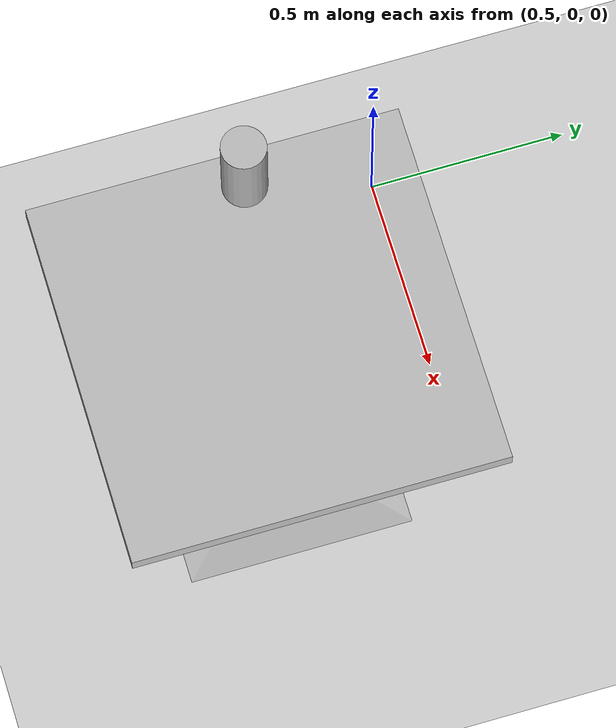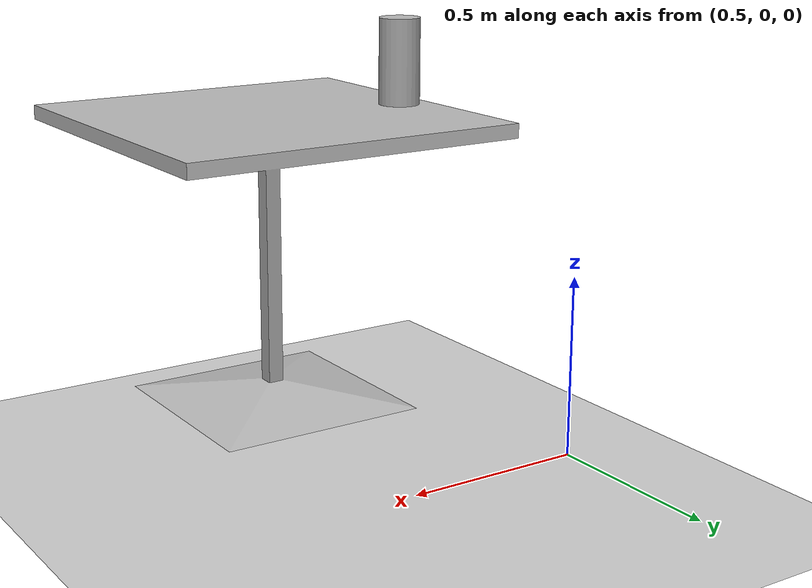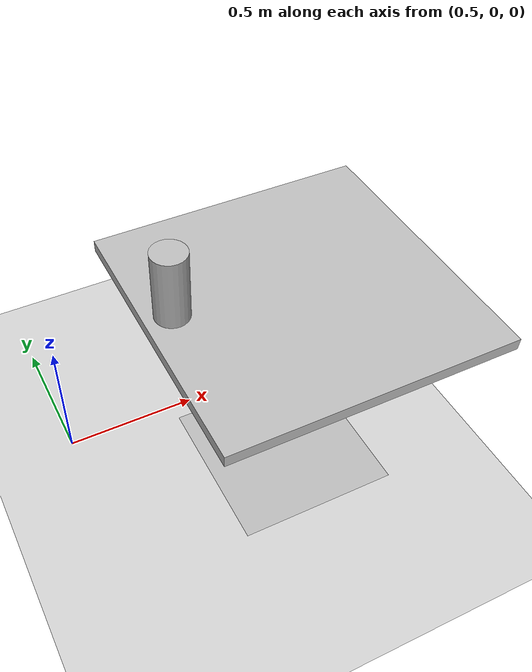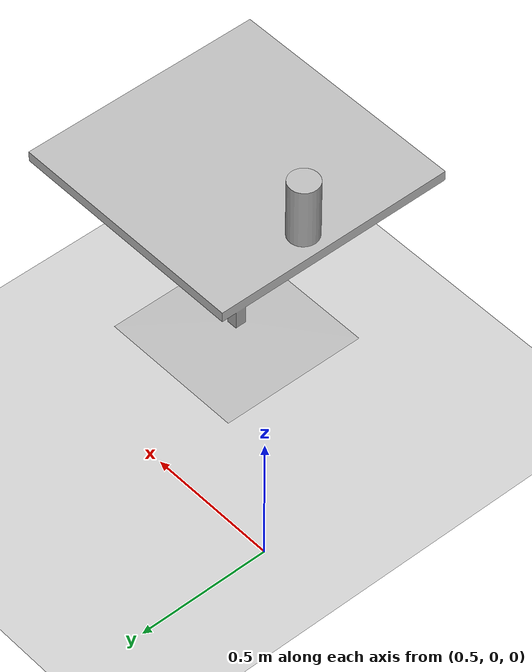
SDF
<sdf version="1.6">
 <world name="default">
  <light name="sun" type="directional">
   <pose>0 0 10 0 -0 0</pose>
   <diffuse>0.8 0.8 0.8 1</diffuse>
   <specular>0.2 0.2 0.2 1</specular>
   <attenuation>
    <range>1000</range>
    <constant>0.9</constant>
    <linear>0.01</linear>
    <quadratic>0.001</quadratic>
   </attenuation>
   <direction>-0.5 0.1 -0.9</direction>
  </light>
  <physics name="dart_1ms" default="1" type="dart">
   <max_step_size>0.001</max_step_size>
   <real_time_factor>1</real_time_factor>
   <real_time_update_rate>1000</real_time_update_rate>
   <dart><solver><solver_type>pgs</solver_type></solver></dart>
  </physics>
  <physics name="dart_2ms" default="0" type="dart">
   <max_step_size>0.002</max_step_size>
   <real_time_factor>1</real_time_factor>
   <real_time_update_rate>500</real_time_update_rate>
   <dart><solver><solver_type>pgs</solver_type></solver></dart>
  </physics>
  <physics name="dart_3ms" default="0" type="dart">
   <max_step_size>0.003</max_step_size>
   <real_time_factor>1</real_time_factor>
   <real_time_update_rate>333</real_time_update_rate>
   <dart><solver><solver_type>pgs</solver_type></solver></dart>
  </physics>
  <physics name="ode_1ms" default="0" type="ode">
   <max_step_size>0.001</max_step_size>
   <real_time_factor>1</real_time_factor>
   <real_time_update_rate>1000</real_time_update_rate>
  </physics>
  <physics name="ode_2ms" default="0" type="ode">
   <max_step_size>0.002</max_step_size>
   <real_time_factor>1</real_time_factor>
   <real_time_update_rate>500</real_time_update_rate>
  </physics>
  <physics name="ode_3ms" default="0" type="ode">
   <max_step_size>0.003</max_step_size>
   <real_time_factor>1</real_time_factor>
   <real_time_update_rate>333</real_time_update_rate>
  </physics>
  <model name="ground_plane">
   <static>1</static>
   <link name="link">
    <collision name="collision">
     <geometry><plane><normal>0 0 1</normal><size>100 100</size></plane></geometry>
     <surface>
      <contact><collide_bitmask>65535</collide_bitmask></contact>
      <friction><ode><mu>100</mu><mu2>50</mu2></ode></friction>
     </surface>
    </collision>
    <visual name="visual">
     <cast_shadows>0</cast_shadows>
     <geometry><plane><normal>0 0 1</normal><size>100 100</size></plane></geometry>
     <material>
      <script><uri>file://media/materials/scripts/gazebo.material</uri><name>Gazebo/Grey</name></script>
     </material>
    </visual>
   </link>
  </model>
  <gravity>0 0 -9.8</gravity>
  <magnetic_field>6e-06 2.3e-05 -4.2e-05</magnetic_field>
  <atmosphere type="adiabatic"/>
  <scene><ambient>0.4 0.4 0.4 1</ambient><background>0.7 0.7 0.7 1</background><shadows>1</shadows></scene>
  <spherical_coordinates>
   <surface_model>EARTH_WGS84</surface_model>
   <latitude_deg>0</latitude_deg>
   <longitude_deg>0</longitude_deg>
   <elevation>0</elevation>
   <heading_deg>0</heading_deg>
  </spherical_coordinates>
  <model name="cafe_table">
   <static>1</static>
   <link name="link">
    <collision name="surface">
     <pose>0 0 0.755 0 -0 0</pose>
     <geometry><box><size>0.913 0.913 0.04</size></box></geometry>
    </collision>
    <collision name="column">
     <pose>0 0 0.37 0 -0 0</pose>
     <geometry><box><size>0.042 0.042 0.74</size></box></geometry>
    </collision>
    <collision name="base">
     <pose>0 0 0.02 0 -0 0</pose>
     <geometry><box><size>0.56 0.56 0.04</size></box></geometry>
    </collision>
    <visual name="visual">
     <geometry><mesh><uri>model://cafe_table/meshes/cafe_table.dae</uri></mesh></geometry>
    </visual>
   </link>
   <pose>1.15625 -0.459284 0.154314 0 -0 0</pose>
  </model>
  <model name="beer">
   <link name="link">
    <pose>0 0 0.115 0 -0 0</pose>
    <inertial>
     <mass>0.39</mass>
     <inertia><ixx>0.00058</ixx><ixy>0</ixy><ixz>0</ixz><iyy>0.00058</iyy><iyz>0</iyz><izz>0.00019</izz></inertia>
    </inertial>
    <collision name="collision">
     <geometry><cylinder><radius>0.055</radius><length>0.23</length></cylinder></geometry>
    </collision>
    <visual name="visual">
     <geometry><cylinder><radius>0.055</radius><length>0.23</length></cylinder></geometry>
     <material>
      <script>
       <uri>model://beer/materials/scripts</uri>
       <uri>model://beer/materials/textures</uri>
       <name>Beer/Diffuse</name>
      </script>
     </material>
    </visual>
   </link>
   <pose>0.786047 -0.405267 0.929312 3.6e-05 -3.3e-05 2.39567</pose>
  </model>
 </world>
</sdf>
